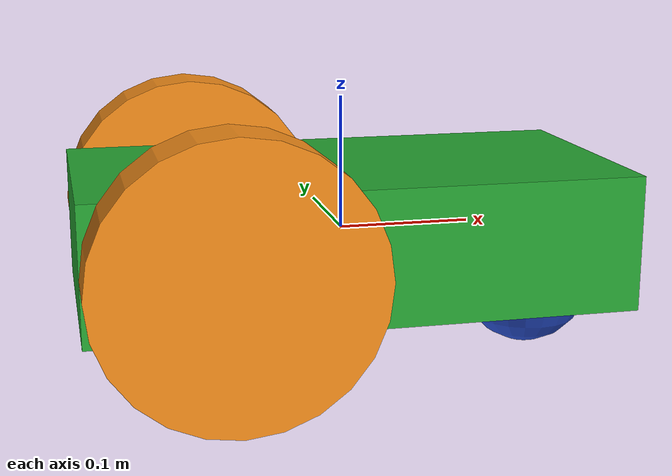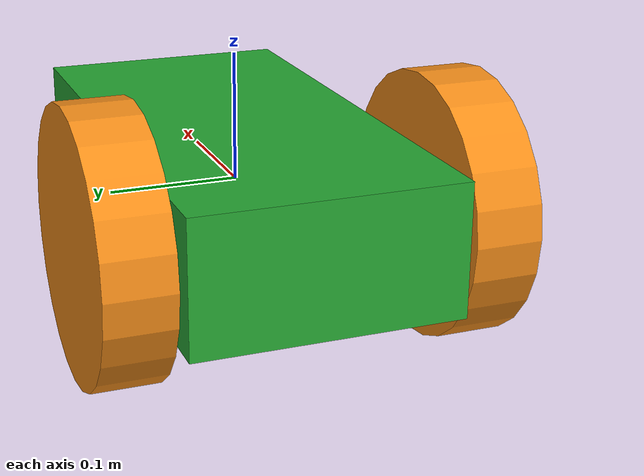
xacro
<?xml version="1.0"?>
<robot name="simple_robot" xmlns:xacro="http://www.ros.org/wiki/xacro">

    <!-- Start of Links - first link must be a non-inertial link -->
    <link name="base_link">
    </link>

    <link name="chassis">
        <inertial>
            <mass value="1"/>
            <inertia ixx="0.004" ixy="0.0" ixz="0.0" iyy="0.004" iyz="0.0" izz="0.002"/>
        </inertial>
        <collision name="chassis">
            <geometry>
                <box size=".4 .2 .1" />
            </geometry>
        </collision>
        <visual name="chassis">
            <geometry>
                <box size=".4 .2 .1" />
            </geometry>
        </visual>
    </link>

    <link name="castor">
        <inertial>
            <mass value=".1"/>
            <inertia ixx="0.004" ixy="0.0" ixz="0.0" iyy="0.004" iyz="0.0" izz="0.002"/>
        </inertial>
        <collision name="castor">
            <geometry>
                <sphere radius=".05" />
            </geometry>
        </collision>
        <visual name='visual'>
            <geometry>
                <sphere radius=".05" />
            </geometry>
        </visual>
    </link>

    <link name="left_wheel">
        <inertial>
            <mass value=".5"/>
            <inertia ixx="0.004" ixy="0.0" ixz="0.0" iyy="0.004" iyz="0.0" izz="0.002"/>
        </inertial>
        <pose>0.1 0.13 0.1 0 1.5707 1.5707</pose>
        <collision name="left_wheel">
            <geometry>
                <cylinder radius='.1' length='.05'/>
            </geometry>
        </collision>
        <visual name="left_wheel">
            <geometry>
                <cylinder radius='.1' length='.05'/>
            </geometry>
        </visual>
    </link>

    <link name="right_wheel">
        <inertial>
            <mass value=".5"/>
            <inertia ixx="0.004" ixy="0.0" ixz="0.0" iyy="0.004" iyz="0.0" izz="0.002"/>
        </inertial>
        <pose>0.1 0.13 0.1 0 1.5707 1.5707</pose>
        <collision name="right_wheel">
            <geometry>
                <cylinder radius='.1' length='.05'/>
            </geometry>
        </collision>
        <visual name="right_wheel">
            <geometry>
                <cylinder radius='.1' length='.05'/>
            </geometry>
        </visual>
    </link>

    <!-- Start of Joints - connecting all links together -->

    <joint name="joint0" type="fixed">
        <parent link="base_link"/>
        <child link="chassis"/>
        <origin xyz="0 0 0" rpy="0 0 0"/>
        <axis xyz="0 1 0"/>
        <dynamics damping="0.7"/>
    </joint>

    <joint name="joint1" type="fixed">
        <parent link="chassis"/>
        <child link="castor"/>
        <origin xyz=".15 0 -.05" rpy="0 0 0"/>
        <axis xyz="0 1 0"/>
        <dynamics damping="0.7"/>
    </joint>

    <joint type="continuous" name="wheel_left_joint">
        <parent link="chassis"/>
        <child link="left_wheel"/>
        <origin xyz="-0.1 0.13 0" rpy="0 1.5707 1.5707"/>
        <axis xyz="0 0 1"/>
        <calibration rising="0.0"/>
        <dynamics damping="0.0" friction="0.0"/>
        <limit effort="30" velocity="2.0" />
        <safety_controller k_velocity="10" k_position="15" soft_lower_limit="-2.0" soft_upper_limit="0.5" />
    </joint>

    <joint type="continuous" name="wheel_right_joint">
        <parent link="chassis"/>
        <child link="right_wheel"/>
        <origin xyz="-0.1 -0.13 0" rpy="0 1.5707 1.5707"/>
        <axis xyz="0 0 1"/>
        <calibration rising="0.0"/>
        <dynamics damping="0.0" friction="0.0"/>
        <limit effort="30" velocity="2.0" />
        <safety_controller k_velocity="10" k_position="15" soft_lower_limit="-2.0" soft_upper_limit="0.5" />
    </joint>

    <!-- Transmissions are where the ros_controller interacts -->
    <ros2_control name="GazeboSystem" type="system">
      <hardware>
        <plugin>gazebo_ros2_control/GazeboSystem</plugin>
      </hardware>
      <joint name="wheel_left_joint">
        <command_interface name="velocity">
          <param name="min">-1</param>
          <param name="max">1</param>
        </command_interface>
        <state_interface name="position">
          <param name="initial_value">0.0</param>
        </state_interface>
        <state_interface name="velocity">
          <param name="initial_value">0.0</param>
        </state_interface>
      </joint>
      <joint name="wheel_right_joint">
        <command_interface name="velocity">
          <param name="min">-1</param>
          <param name="max">1</param>
        </command_interface>
        <state_interface name="position">
          <param name="initial_value">0.0</param>
        </state_interface>
        <state_interface name="velocity">
          <param name="initial_value">0.0</param>
        </state_interface>
      </joint>
    </ros2_control>

  <gazebo>
    <!-- Joint state publisher -->
    <plugin filename="libgazebo_ros2_control.so" name="gazebo_ros2_control">
      <parameters>$(find simple_robot_ros2)/config/simple_diff_drive.yaml</parameters>
    </plugin>
  </gazebo>

  <gazebo reference="chassis">
  	<material>Gazebo/Green</material>
    	<mu1>.01</mu1>
    	<mu2>.01</mu2>
        <fdir1>0.000000 0.000000 0.000000</fdir1>
        <slip1>1.000000</slip1>
        <slip2>1.000000</slip2>
  </gazebo>

  <gazebo reference="left_wheel">
    	<material>Gazebo/Orange</material>
    	<mu1>100000</mu1>
    	<mu2>100000</mu2>
        <fdir1>0.000000 0.000000 0.000000</fdir1>
        <slip1>0.000000</slip1>
        <slip2>0.000000</slip2>
  </gazebo>

  <gazebo reference="right_wheel">
    	<material>Gazebo/Orange</material>
    	<mu1>100000</mu1>
    	<mu2>100000</mu2>
        <fdir1>0.000000 0.000000 0.000000</fdir1>
        <slip1>0.000000</slip1>
        <slip2>0.000000</slip2>
  </gazebo>
  <gazebo reference="castor">
  	<material>Gazebo/Blue</material>
    	<mu1>.01</mu1>
    	<mu2>.01</mu2>
        <fdir1>0.000000 0.000000 0.000000</fdir1>
        <slip1>1.000000</slip1>
        <slip2>1.000000</slip2>
  </gazebo>

</robot>
